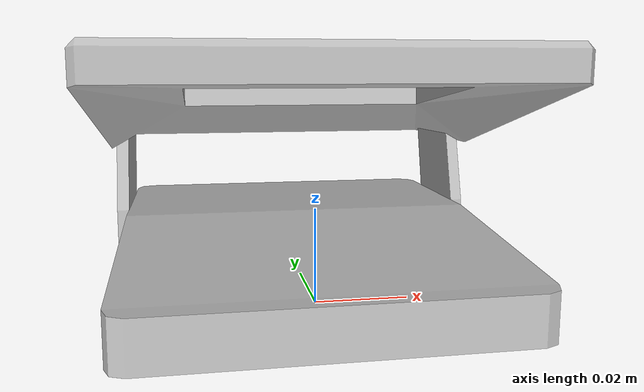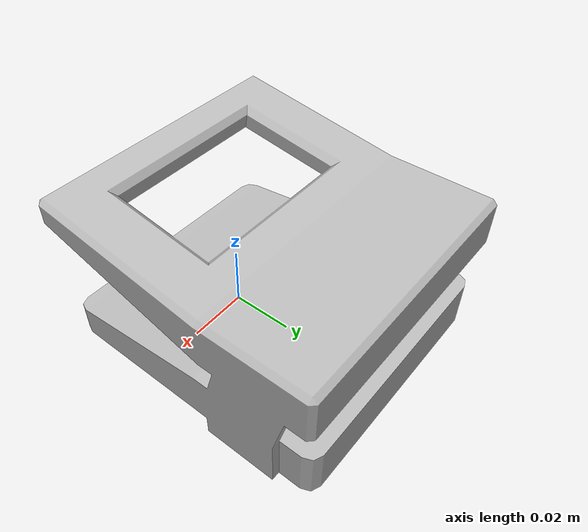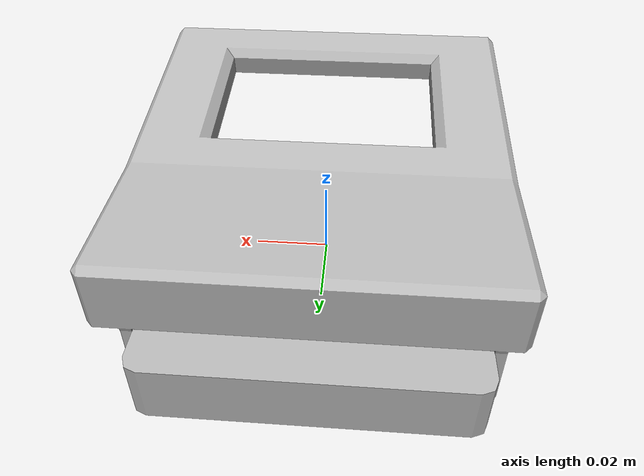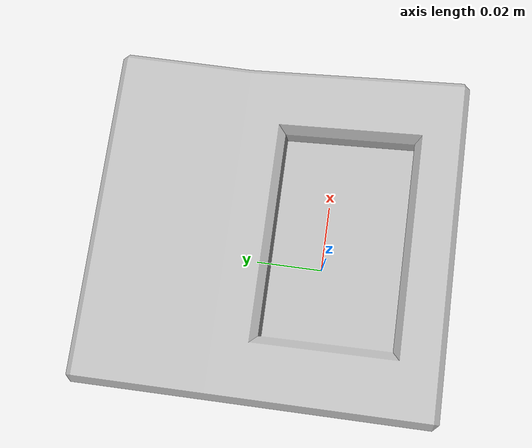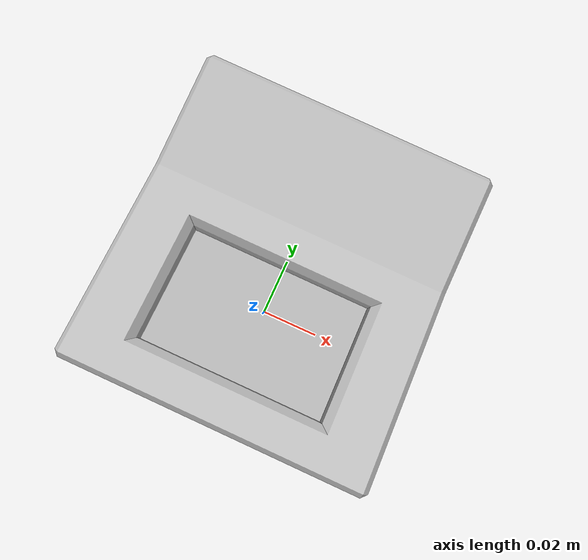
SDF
<?xml version='1.0'?>
<sdf version="1.4">
	<model name="puncher">
		<static>1</static>
		<link name="link">
			<visual name="mesh">
				<geometry>
					<mesh>
						<uri>model://meshes/puncher.dae</uri>
					</mesh>
				</geometry>
			</visual>
			<collision name="box">
				<pose>0 0 0.025 0 0 0</pose>
				<geometry>
					<box>
						<size>0.086 0.091 0.053</size>
					</box>
				</geometry>
			</collision>
		</link>
	</model>
</sdf>
